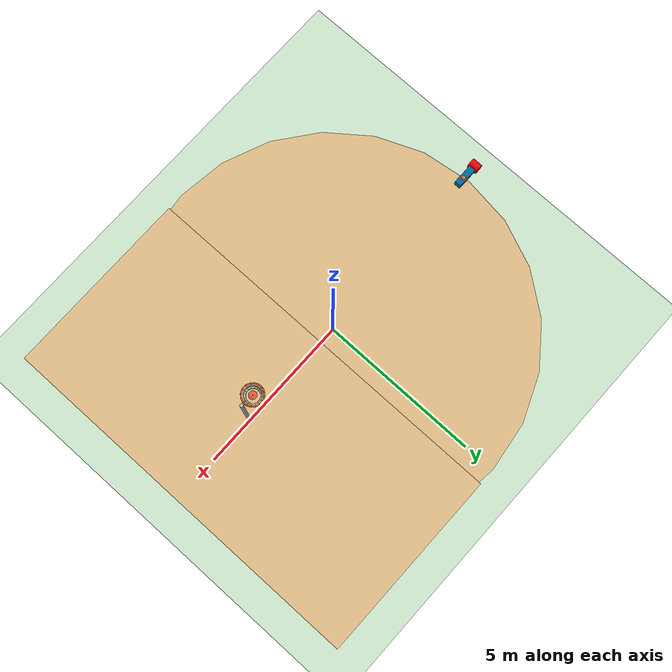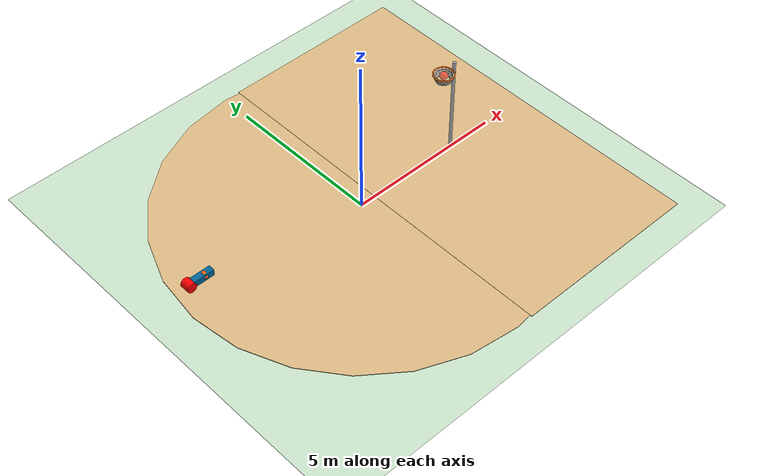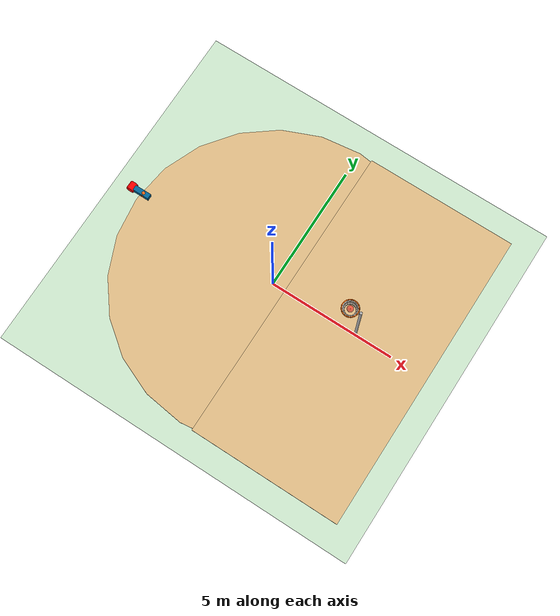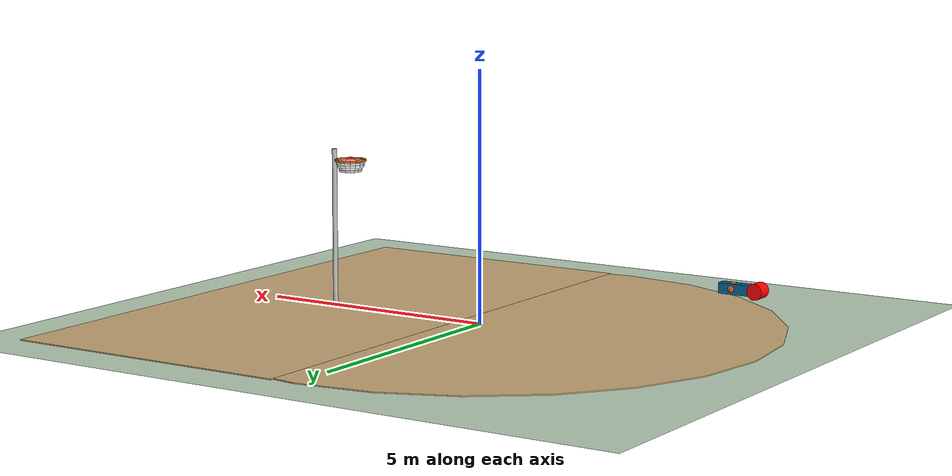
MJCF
<mujoco model="three_pointer">
      <compiler angle="radian" inertiafromgeom="true" />
      <default>
            <joint armature="1" damping="1" limited="true" />
            <geom conaffinity="1" condim="3" contype="1" friction=".4 .1 .1"
                  rgba="0.8 0.6 .4 1" solimp="0.0 0.8 0.01" solref="0.02 1" />
      </default>
      <option gravity="0 0 -9.81" integrator="RK4" timestep="0.01" />

      <asset>
            <texture builtin="gradient" height="100" rgb1="1 1 1" rgb2="0 0 0"
                  type="skybox" width="100" />
            <texture builtin="checker" height="100" name="texplane"
                  rgb1="0 0 0" rgb2="0.8 0.8 0.8" type="2d" width="100" />
            <material name="MatPlane" reflectance="0.5" shininess="1" specular="1"
                  texrepeat="60 60" texture="texplane" />
      </asset>

      <worldbody>
            <light cutoff="100" diffuse="1 1 1" dir="-0 0 -1.3"
                  directional="true" exponent="1" pos="0 0 5" specular=".1 .1 .1" />
            <geom conaffinity="1" condim="3" material="MatPlane" name="floor"
                  pos="0 0 0" rgba="0.8 0.9 0.8 1" size="40 40 40" type="plane" />

            <!-- Arena (visual only) -->
            <body name="combined_arena">
                  <camera name="track" mode="fixed" pos="0 -19 3.0" xyaxes="1 0 0 0 0 1" />
                  <geom type="cylinder" size="6 0.01" pos="0 0 0"
                        conaffinity="0" contype="0" rgba="0.87 0.73 0.52 1" />
                  <geom type="box" size="3 6 0.01" pos="3.5 0 0.001"
                        conaffinity="0" contype="0" rgba="0.87 0.73 0.52 1" />
            </body>

            <!-- Basketball Hoop (FIXED — removed sliding joints) -->
            <body name="basketball_hoop" pos="-3 0 0">
                  <!-- Rim: R=0.3, N=16, tube=0.02 -->
                  <geom type="cylinder" size="0.02 0.05890" pos="6.4000 0.0000 3" axisangle="-1.0000 -0.0000 0 1.5708" conaffinity="1" contype="0" rgba="1.0 0.4 0.0 1"/>
                  <geom type="cylinder" size="0.02 0.05890" pos="6.3772 0.1148 3" axisangle="-0.9239 -0.3827 0 1.5708" conaffinity="1" contype="0" rgba="1.0 0.4 0.0 1"/>
                  <geom type="cylinder" size="0.02 0.05890" pos="6.3121 0.2121 3" axisangle="-0.7071 -0.7071 0 1.5708" conaffinity="1" contype="0" rgba="1.0 0.4 0.0 1"/>
                  <geom type="cylinder" size="0.02 0.05890" pos="6.2148 0.2772 3" axisangle="-0.3827 -0.9239 0 1.5708" conaffinity="1" contype="0" rgba="1.0 0.4 0.0 1"/>
                  <geom type="cylinder" size="0.02 0.05890" pos="6.1000 0.3000 3" axisangle="-0.0000 -1.0000 0 1.5708" conaffinity="1" contype="0" rgba="1.0 0.4 0.0 1"/>
                  <geom type="cylinder" size="0.02 0.05890" pos="5.9852 0.2772 3" axisangle="0.3827 -0.9239 0 1.5708" conaffinity="1" contype="0" rgba="1.0 0.4 0.0 1"/>
                  <geom type="cylinder" size="0.02 0.05890" pos="5.8879 0.2121 3" axisangle="0.7071 -0.7071 0 1.5708" conaffinity="1" contype="0" rgba="1.0 0.4 0.0 1"/>
                  <geom type="cylinder" size="0.02 0.05890" pos="5.8228 0.1148 3" axisangle="0.9239 -0.3827 0 1.5708" conaffinity="1" contype="0" rgba="1.0 0.4 0.0 1"/>
                  <geom type="cylinder" size="0.02 0.05890" pos="5.8000 0.0000 3" axisangle="1.0000 -0.0000 0 1.5708" conaffinity="1" contype="0" rgba="1.0 0.4 0.0 1"/>
                  <geom type="cylinder" size="0.02 0.05890" pos="5.8228 -0.1148 3" axisangle="0.9239 0.3827 0 1.5708" conaffinity="1" contype="0" rgba="1.0 0.4 0.0 1"/>
                  <geom type="cylinder" size="0.02 0.05890" pos="5.8879 -0.2121 3" axisangle="0.7071 0.7071 0 1.5708" conaffinity="1" contype="0" rgba="1.0 0.4 0.0 1"/>
                  <geom type="cylinder" size="0.02 0.05890" pos="5.9852 -0.2772 3" axisangle="0.3827 0.9239 0 1.5708" conaffinity="1" contype="0" rgba="1.0 0.4 0.0 1"/>
                  <geom type="cylinder" size="0.02 0.05890" pos="6.1000 -0.3000 3" axisangle="0.0000 1.0000 0 1.5708" conaffinity="1" contype="0" rgba="1.0 0.4 0.0 1"/>
                  <geom type="cylinder" size="0.02 0.05890" pos="6.2148 -0.2772 3" axisangle="-0.3827 0.9239 0 1.5708" conaffinity="1" contype="0" rgba="1.0 0.4 0.0 1"/>
                  <geom type="cylinder" size="0.02 0.05890" pos="6.3121 -0.2121 3" axisangle="-0.7071 0.7071 0 1.5708" conaffinity="1" contype="0" rgba="1.0 0.4 0.0 1"/>
                  <geom type="cylinder" size="0.02 0.05890" pos="6.3772 -0.1148 3" axisangle="-0.9239 0.3827 0 1.5708" conaffinity="1" contype="0" rgba="1.0 0.4 0.0 1"/>

                  <!-- Rim: R=0.27, N=16, tube=0.02 -->
<geom type="cylinder" size="0.02 0.05301" pos="6.3700 0.0000 2.98" axisangle="-1.0000 -0.0000 0 1.5708" conaffinity="1" contype="0" rgba="1.0 1.0 1.0 0.7"/>
<geom type="cylinder" size="0.02 0.05301" pos="6.3494 0.1033 2.98" axisangle="-0.9239 -0.3827 0 1.5708" conaffinity="1" contype="0" rgba="1.0 1.0 1.0 0.7"/>
<geom type="cylinder" size="0.02 0.05301" pos="6.2909 0.1909 2.98" axisangle="-0.7071 -0.7071 0 1.5708" conaffinity="1" contype="0" rgba="1.0 1.0 1.0 0.7"/>
<geom type="cylinder" size="0.02 0.05301" pos="6.2033 0.2494 2.98" axisangle="-0.3827 -0.9239 0 1.5708" conaffinity="1" contype="0" rgba="1.0 1.0 1.0 0.7"/>
<geom type="cylinder" size="0.02 0.05301" pos="6.1000 0.2700 2.98" axisangle="-0.0000 -1.0000 0 1.5708" conaffinity="1" contype="0" rgba="1.0 1.0 1.0 0.7"/>
<geom type="cylinder" size="0.02 0.05301" pos="5.9967 0.2494 2.98" axisangle="0.3827 -0.9239 0 1.5708" conaffinity="1" contype="0" rgba="1.0 1.0 1.0 0.7"/>
<geom type="cylinder" size="0.02 0.05301" pos="5.9091 0.1909 2.98" axisangle="0.7071 -0.7071 0 1.5708" conaffinity="1" contype="0" rgba="1.0 1.0 1.0 0.7"/>
<geom type="cylinder" size="0.02 0.05301" pos="5.8506 0.1033 2.98" axisangle="0.9239 -0.3827 0 1.5708" conaffinity="1" contype="0" rgba="1.0 1.0 1.0 0.7"/>
<geom type="cylinder" size="0.02 0.05301" pos="5.8300 0.0000 2.98" axisangle="1.0000 -0.0000 0 1.5708" conaffinity="1" contype="0" rgba="1.0 1.0 1.0 0.7"/>
<geom type="cylinder" size="0.02 0.05301" pos="5.8506 -0.1033 2.98" axisangle="0.9239 0.3827 0 1.5708" conaffinity="1" contype="0" rgba="1.0 1.0 1.0 0.7"/>
<geom type="cylinder" size="0.02 0.05301" pos="5.9091 -0.1909 2.98" axisangle="0.7071 0.7071 0 1.5708" conaffinity="1" contype="0" rgba="1.0 1.0 1.0 0.7"/>
<geom type="cylinder" size="0.02 0.05301" pos="5.9967 -0.2494 2.98" axisangle="0.3827 0.9239 0 1.5708" conaffinity="1" contype="0" rgba="1.0 1.0 1.0 0.7"/>
<geom type="cylinder" size="0.02 0.05301" pos="6.1000 -0.2700 2.98" axisangle="0.0000 1.0000 0 1.5708" conaffinity="1" contype="0" rgba="1.0 1.0 1.0 0.7"/>
<geom type="cylinder" size="0.02 0.05301" pos="6.2033 -0.2494 2.98" axisangle="-0.3827 0.9239 0 1.5708" conaffinity="1" contype="0" rgba="1.0 1.0 1.0 0.7"/>
<geom type="cylinder" size="0.02 0.05301" pos="6.2909 -0.1909 2.98" axisangle="-0.7071 0.7071 0 1.5708" conaffinity="1" contype="0" rgba="1.0 1.0 1.0 0.7"/>
<geom type="cylinder" size="0.02 0.05301" pos="6.3494 -0.1033 2.98" axisangle="-0.9239 0.3827 0 1.5708" conaffinity="1" contype="0" rgba="1.0 1.0 1.0 0.7"/>
<!-- Rim: R=0.27, N=16, tube=0.02 -->
<geom type="cylinder" size="0.02 0.05301" pos="6.3700 0.0000 2.95" axisangle="-1.0000 -0.0000 0 1.5708" conaffinity="1" contype="0" rgba="1.0 1.0 1.0 0.7"/>
<geom type="cylinder" size="0.02 0.05301" pos="6.3494 0.1033 2.95" axisangle="-0.9239 -0.3827 0 1.5708" conaffinity="1" contype="0" rgba="1.0 1.0 1.0 0.7"/>
<geom type="cylinder" size="0.02 0.05301" pos="6.2909 0.1909 2.95" axisangle="-0.7071 -0.7071 0 1.5708" conaffinity="1" contype="0" rgba="1.0 1.0 1.0 0.7"/>
<geom type="cylinder" size="0.02 0.05301" pos="6.2033 0.2494 2.95" axisangle="-0.3827 -0.9239 0 1.5708" conaffinity="1" contype="0" rgba="1.0 1.0 1.0 0.7"/>
<geom type="cylinder" size="0.02 0.05301" pos="6.1000 0.2700 2.95" axisangle="-0.0000 -1.0000 0 1.5708" conaffinity="1" contype="0" rgba="1.0 1.0 1.0 0.7"/>
<geom type="cylinder" size="0.02 0.05301" pos="5.9967 0.2494 2.95" axisangle="0.3827 -0.9239 0 1.5708" conaffinity="1" contype="0" rgba="1.0 1.0 1.0 0.7"/>
<geom type="cylinder" size="0.02 0.05301" pos="5.9091 0.1909 2.95" axisangle="0.7071 -0.7071 0 1.5708" conaffinity="1" contype="0" rgba="1.0 1.0 1.0 0.7"/>
<geom type="cylinder" size="0.02 0.05301" pos="5.8506 0.1033 2.95" axisangle="0.9239 -0.3827 0 1.5708" conaffinity="1" contype="0" rgba="1.0 1.0 1.0 0.7"/>
<geom type="cylinder" size="0.02 0.05301" pos="5.8300 0.0000 2.95" axisangle="1.0000 -0.0000 0 1.5708" conaffinity="1" contype="0" rgba="1.0 1.0 1.0 0.7"/>
<geom type="cylinder" size="0.02 0.05301" pos="5.8506 -0.1033 2.95" axisangle="0.9239 0.3827 0 1.5708" conaffinity="1" contype="0" rgba="1.0 1.0 1.0 0.7"/>
<geom type="cylinder" size="0.02 0.05301" pos="5.9091 -0.1909 2.95" axisangle="0.7071 0.7071 0 1.5708" conaffinity="1" contype="0" rgba="1.0 1.0 1.0 0.7"/>
<geom type="cylinder" size="0.02 0.05301" pos="5.9967 -0.2494 2.95" axisangle="0.3827 0.9239 0 1.5708" conaffinity="1" contype="0" rgba="1.0 1.0 1.0 0.7"/>
<geom type="cylinder" size="0.02 0.05301" pos="6.1000 -0.2700 2.95" axisangle="0.0000 1.0000 0 1.5708" conaffinity="1" contype="0" rgba="1.0 1.0 1.0 0.7"/>
<geom type="cylinder" size="0.02 0.05301" pos="6.2033 -0.2494 2.95" axisangle="-0.3827 0.9239 0 1.5708" conaffinity="1" contype="0" rgba="1.0 1.0 1.0 0.7"/>
<geom type="cylinder" size="0.02 0.05301" pos="6.2909 -0.1909 2.95" axisangle="-0.7071 0.7071 0 1.5708" conaffinity="1" contype="0" rgba="1.0 1.0 1.0 0.7"/>
<geom type="cylinder" size="0.02 0.05301" pos="6.3494 -0.1033 2.95" axisangle="-0.9239 0.3827 0 1.5708" conaffinity="1" contype="0" rgba="1.0 1.0 1.0 0.7"/>
<!-- Rim: R=0.26, N=16, tube=0.02 -->
<geom type="cylinder" size="0.02 0.05105" pos="6.3600 0.0000 2.92" axisangle="-1.0000 -0.0000 0 1.5708" conaffinity="1" contype="0" rgba="1.0 1.0 1.0 0.7"/>
<geom type="cylinder" size="0.02 0.05105" pos="6.3402 0.0995 2.92" axisangle="-0.9239 -0.3827 0 1.5708" conaffinity="1" contype="0" rgba="1.0 1.0 1.0 0.7"/>
<geom type="cylinder" size="0.02 0.05105" pos="6.2838 0.1838 2.92" axisangle="-0.7071 -0.7071 0 1.5708" conaffinity="1" contype="0" rgba="1.0 1.0 1.0 0.7"/>
<geom type="cylinder" size="0.02 0.05105" pos="6.1995 0.2402 2.92" axisangle="-0.3827 -0.9239 0 1.5708" conaffinity="1" contype="0" rgba="1.0 1.0 1.0 0.7"/>
<geom type="cylinder" size="0.02 0.05105" pos="6.1000 0.2600 2.92" axisangle="-0.0000 -1.0000 0 1.5708" conaffinity="1" contype="0" rgba="1.0 1.0 1.0 0.7"/>
<geom type="cylinder" size="0.02 0.05105" pos="6.0005 0.2402 2.92" axisangle="0.3827 -0.9239 0 1.5708" conaffinity="1" contype="0" rgba="1.0 1.0 1.0 0.7"/>
<geom type="cylinder" size="0.02 0.05105" pos="5.9162 0.1838 2.92" axisangle="0.7071 -0.7071 0 1.5708" conaffinity="1" contype="0" rgba="1.0 1.0 1.0 0.7"/>
<geom type="cylinder" size="0.02 0.05105" pos="5.8598 0.0995 2.92" axisangle="0.9239 -0.3827 0 1.5708" conaffinity="1" contype="0" rgba="1.0 1.0 1.0 0.7"/>
<geom type="cylinder" size="0.02 0.05105" pos="5.8400 0.0000 2.92" axisangle="1.0000 -0.0000 0 1.5708" conaffinity="1" contype="0" rgba="1.0 1.0 1.0 0.7"/>
<geom type="cylinder" size="0.02 0.05105" pos="5.8598 -0.0995 2.92" axisangle="0.9239 0.3827 0 1.5708" conaffinity="1" contype="0" rgba="1.0 1.0 1.0 0.7"/>
<geom type="cylinder" size="0.02 0.05105" pos="5.9162 -0.1838 2.92" axisangle="0.7071 0.7071 0 1.5708" conaffinity="1" contype="0" rgba="1.0 1.0 1.0 0.7"/>
<geom type="cylinder" size="0.02 0.05105" pos="6.0005 -0.2402 2.92" axisangle="0.3827 0.9239 0 1.5708" conaffinity="1" contype="0" rgba="1.0 1.0 1.0 0.7"/>
<geom type="cylinder" size="0.02 0.05105" pos="6.1000 -0.2600 2.92" axisangle="0.0000 1.0000 0 1.5708" conaffinity="1" contype="0" rgba="1.0 1.0 1.0 0.7"/>
<geom type="cylinder" size="0.02 0.05105" pos="6.1995 -0.2402 2.92" axisangle="-0.3827 0.9239 0 1.5708" conaffinity="1" contype="0" rgba="1.0 1.0 1.0 0.7"/>
<geom type="cylinder" size="0.02 0.05105" pos="6.2838 -0.1838 2.92" axisangle="-0.7071 0.7071 0 1.5708" conaffinity="1" contype="0" rgba="1.0 1.0 1.0 0.7"/>
<geom type="cylinder" size="0.02 0.05105" pos="6.3402 -0.0995 2.92" axisangle="-0.9239 0.3827 0 1.5708" conaffinity="1" contype="0" rgba="1.0 1.0 1.0 0.7"/>
<!-- Rim: R=0.25, N=16, tube=0.02 -->
<geom type="cylinder" size="0.02 0.04909" pos="6.3500 0.0000 2.88" axisangle="-1.0000 -0.0000 0 1.5708" conaffinity="1" contype="0" rgba="1.0 1.0 1.0 0.7"/>
<geom type="cylinder" size="0.02 0.04909" pos="6.3310 0.0957 2.88" axisangle="-0.9239 -0.3827 0 1.5708" conaffinity="1" contype="0" rgba="1.0 1.0 1.0 0.7"/>
<geom type="cylinder" size="0.02 0.04909" pos="6.2768 0.1768 2.88" axisangle="-0.7071 -0.7071 0 1.5708" conaffinity="1" contype="0" rgba="1.0 1.0 1.0 0.7"/>
<geom type="cylinder" size="0.02 0.04909" pos="6.1957 0.2310 2.88" axisangle="-0.3827 -0.9239 0 1.5708" conaffinity="1" contype="0" rgba="1.0 1.0 1.0 0.7"/>
<geom type="cylinder" size="0.02 0.04909" pos="6.1000 0.2500 2.88" axisangle="-0.0000 -1.0000 0 1.5708" conaffinity="1" contype="0" rgba="1.0 1.0 1.0 0.7"/>
<geom type="cylinder" size="0.02 0.04909" pos="6.0043 0.2310 2.88" axisangle="0.3827 -0.9239 0 1.5708" conaffinity="1" contype="0" rgba="1.0 1.0 1.0 0.7"/>
<geom type="cylinder" size="0.02 0.04909" pos="5.9232 0.1768 2.88" axisangle="0.7071 -0.7071 0 1.5708" conaffinity="1" contype="0" rgba="1.0 1.0 1.0 0.7"/>
<geom type="cylinder" size="0.02 0.04909" pos="5.8690 0.0957 2.88" axisangle="0.9239 -0.3827 0 1.5708" conaffinity="1" contype="0" rgba="1.0 1.0 1.0 0.7"/>
<geom type="cylinder" size="0.02 0.04909" pos="5.8500 0.0000 2.88" axisangle="1.0000 -0.0000 0 1.5708" conaffinity="1" contype="0" rgba="1.0 1.0 1.0 0.7"/>
<geom type="cylinder" size="0.02 0.04909" pos="5.8690 -0.0957 2.88" axisangle="0.9239 0.3827 0 1.5708" conaffinity="1" contype="0" rgba="1.0 1.0 1.0 0.7"/>
<geom type="cylinder" size="0.02 0.04909" pos="5.9232 -0.1768 2.88" axisangle="0.7071 0.7071 0 1.5708" conaffinity="1" contype="0" rgba="1.0 1.0 1.0 0.7"/>
<geom type="cylinder" size="0.02 0.04909" pos="6.0043 -0.2310 2.88" axisangle="0.3827 0.9239 0 1.5708" conaffinity="1" contype="0" rgba="1.0 1.0 1.0 0.7"/>
<geom type="cylinder" size="0.02 0.04909" pos="6.1000 -0.2500 2.88" axisangle="0.0000 1.0000 0 1.5708" conaffinity="1" contype="0" rgba="1.0 1.0 1.0 0.7"/>
<geom type="cylinder" size="0.02 0.04909" pos="6.1957 -0.2310 2.88" axisangle="-0.3827 0.9239 0 1.5708" conaffinity="1" contype="0" rgba="1.0 1.0 1.0 0.7"/>
<geom type="cylinder" size="0.02 0.04909" pos="6.2768 -0.1768 2.88" axisangle="-0.7071 0.7071 0 1.5708" conaffinity="1" contype="0" rgba="1.0 1.0 1.0 0.7"/>
<geom type="cylinder" size="0.02 0.04909" pos="6.3310 -0.0957 2.88" axisangle="-0.9239 0.3827 0 1.5708" conaffinity="1" contype="0" rgba="1.0 1.0 1.0 0.7"/>

<!-- Rim: R=0.22, N=16, tube=0.02 -->
<geom type="cylinder" size="0.02 0.04320" pos="6.3200 0.0000 2.84" axisangle="-1.0000 -0.0000 0 1.5708" conaffinity="1" contype="0" rgba="1.0 1.0 1.0 0.7"/>
<geom type="cylinder" size="0.02 0.04320" pos="6.3033 0.0842 2.84" axisangle="-0.9239 -0.3827 0 1.5708" conaffinity="1" contype="0" rgba="1.0 1.0 1.0 0.7"/>
<geom type="cylinder" size="0.02 0.04320" pos="6.2556 0.1556 2.84" axisangle="-0.7071 -0.7071 0 1.5708" conaffinity="1" contype="0" rgba="1.0 1.0 1.0 0.7"/>
<geom type="cylinder" size="0.02 0.04320" pos="6.1842 0.2033 2.84" axisangle="-0.3827 -0.9239 0 1.5708" conaffinity="1" contype="0" rgba="1.0 1.0 1.0 0.7"/>
<geom type="cylinder" size="0.02 0.04320" pos="6.1000 0.2200 2.84" axisangle="-0.0000 -1.0000 0 1.5708" conaffinity="1" contype="0" rgba="1.0 1.0 1.0 0.7"/>
<geom type="cylinder" size="0.02 0.04320" pos="6.0158 0.2033 2.84" axisangle="0.3827 -0.9239 0 1.5708" conaffinity="1" contype="0" rgba="1.0 1.0 1.0 0.7"/>
<geom type="cylinder" size="0.02 0.04320" pos="5.9444 0.1556 2.84" axisangle="0.7071 -0.7071 0 1.5708" conaffinity="1" contype="0" rgba="1.0 1.0 1.0 0.7"/>
<geom type="cylinder" size="0.02 0.04320" pos="5.8967 0.0842 2.84" axisangle="0.9239 -0.3827 0 1.5708" conaffinity="1" contype="0" rgba="1.0 1.0 1.0 0.7"/>
<geom type="cylinder" size="0.02 0.04320" pos="5.8800 0.0000 2.84" axisangle="1.0000 -0.0000 0 1.5708" conaffinity="1" contype="0" rgba="1.0 1.0 1.0 0.7"/>
<geom type="cylinder" size="0.02 0.04320" pos="5.8967 -0.0842 2.84" axisangle="0.9239 0.3827 0 1.5708" conaffinity="1" contype="0" rgba="1.0 1.0 1.0 0.7"/>
<geom type="cylinder" size="0.02 0.04320" pos="5.9444 -0.1556 2.84" axisangle="0.7071 0.7071 0 1.5708" conaffinity="1" contype="0" rgba="1.0 1.0 1.0 0.7"/>
<geom type="cylinder" size="0.02 0.04320" pos="6.0158 -0.2033 2.84" axisangle="0.3827 0.9239 0 1.5708" conaffinity="1" contype="0" rgba="1.0 1.0 1.0 0.7"/>
<geom type="cylinder" size="0.02 0.04320" pos="6.1000 -0.2200 2.84" axisangle="0.0000 1.0000 0 1.5708" conaffinity="1" contype="0" rgba="1.0 1.0 1.0 0.7"/>
<geom type="cylinder" size="0.02 0.04320" pos="6.1842 -0.2033 2.84" axisangle="-0.3827 0.9239 0 1.5708" conaffinity="1" contype="0" rgba="1.0 1.0 1.0 0.7"/>
<geom type="cylinder" size="0.02 0.04320" pos="6.2556 -0.1556 2.84" axisangle="-0.7071 0.7071 0 1.5708" conaffinity="1" contype="0" rgba="1.0 1.0 1.0 0.7"/>
<geom type="cylinder" size="0.02 0.04320" pos="6.3033 -0.0842 2.84" axisangle="-0.9239 0.3827 0 1.5708" conaffinity="1" contype="0" rgba="1.0 1.0 1.0 0.7"/>

                  <!-- Rim: R=0.21, N=16, tube=0.02 -->
                  <geom type="cylinder" size="0.02 0.04123" pos="6.3100 0.0000 2.82" axisangle="-1.0000 -0.0000 0 1.5708" conaffinity="1" contype="0" rgba="1.0 1.0 1.0 0.7"/>
                  <geom type="cylinder" size="0.02 0.04123" pos="6.2940 0.0804 2.82" axisangle="-0.9239 -0.3827 0 1.5708" conaffinity="1" contype="0" rgba="1.0 1.0 1.0 0.7"/>
                  <geom type="cylinder" size="0.02 0.04123" pos="6.2485 0.1485 2.82" axisangle="-0.7071 -0.7071 0 1.5708" conaffinity="1" contype="0" rgba="1.0 1.0 1.0 0.7"/>
                  <geom type="cylinder" size="0.02 0.04123" pos="6.1804 0.1940 2.82" axisangle="-0.3827 -0.9239 0 1.5708" conaffinity="1" contype="0" rgba="1.0 1.0 1.0 0.7"/>
                  <geom type="cylinder" size="0.02 0.04123" pos="6.1000 0.2100 2.82" axisangle="-0.0000 -1.0000 0 1.5708" conaffinity="1" contype="0" rgba="1.0 1.0 1.0 0.7"/>
                  <geom type="cylinder" size="0.02 0.04123" pos="6.0196 0.1940 2.82" axisangle="0.3827 -0.9239 0 1.5708" conaffinity="1" contype="0" rgba="1.0 1.0 1.0 0.7"/>
                  <geom type="cylinder" size="0.02 0.04123" pos="5.9515 0.1485 2.82" axisangle="0.7071 -0.7071 0 1.5708" conaffinity="1" contype="0" rgba="1.0 1.0 1.0 0.7"/>
                  <geom type="cylinder" size="0.02 0.04123" pos="5.9060 0.0804 2.82" axisangle="0.9239 -0.3827 0 1.5708" conaffinity="1" contype="0" rgba="1.0 1.0 1.0 0.7"/>
                  <geom type="cylinder" size="0.02 0.04123" pos="5.8900 0.0000 2.82" axisangle="1.0000 -0.0000 0 1.5708" conaffinity="1" contype="0" rgba="1.0 1.0 1.0 0.7"/>
                  <geom type="cylinder" size="0.02 0.04123" pos="5.9060 -0.0804 2.82" axisangle="0.9239 0.3827 0 1.5708" conaffinity="1" contype="0" rgba="1.0 1.0 1.0 0.7"/>
                  <geom type="cylinder" size="0.02 0.04123" pos="5.9515 -0.1485 2.82" axisangle="0.7071 0.7071 0 1.5708" conaffinity="1" contype="0" rgba="1.0 1.0 1.0 0.7"/>
                  <geom type="cylinder" size="0.02 0.04123" pos="6.0196 -0.1940 2.82" axisangle="0.3827 0.9239 0 1.5708" conaffinity="1" contype="0" rgba="1.0 1.0 1.0 0.7"/>
                  <geom type="cylinder" size="0.02 0.04123" pos="6.1000 -0.2100 2.82" axisangle="0.0000 1.0000 0 1.5708" conaffinity="1" contype="0" rgba="1.0 1.0 1.0 0.7"/>
                  <geom type="cylinder" size="0.02 0.04123" pos="6.1804 -0.1940 2.82" axisangle="-0.3827 0.9239 0 1.5708" conaffinity="1" contype="0" rgba="1.0 1.0 1.0 0.7"/>
                  <geom type="cylinder" size="0.02 0.04123" pos="6.2485 -0.1485 2.82" axisangle="-0.7071 0.7071 0 1.5708" conaffinity="1" contype="0" rgba="1.0 1.0 1.0 0.7"/>
                  <geom type="cylinder" size="0.02 0.04123" pos="6.2940 -0.0804 2.82" axisangle="-0.9239 0.3827 0 1.5708" conaffinity="1" contype="0" rgba="1.0 1.0 1.0 0.7"/>

                  <!-- Rim: R=0.21, N=16, tube=0.02 -->
                  <geom type="cylinder" size="0.02 0.04123" pos="6.3100 0.0000 2.79" axisangle="-1.0000 -0.0000 0 1.5708" conaffinity="1" contype="0" rgba="1.0 1.0 1.0 0.7"/>
                  <geom type="cylinder" size="0.02 0.04123" pos="6.2940 0.0804 2.79" axisangle="-0.9239 -0.3827 0 1.5708" conaffinity="1" contype="0" rgba="1.0 1.0 1.0 0.7"/>
                  <geom type="cylinder" size="0.02 0.04123" pos="6.2485 0.1485 2.79" axisangle="-0.7071 -0.7071 0 1.5708" conaffinity="1" contype="0" rgba="1.0 1.0 1.0 0.7"/>
                  <geom type="cylinder" size="0.02 0.04123" pos="6.1804 0.1940 2.79" axisangle="-0.3827 -0.9239 0 1.5708" conaffinity="1" contype="0" rgba="1.0 1.0 1.0 0.7"/>
                  <geom type="cylinder" size="0.02 0.04123" pos="6.1000 0.2100 2.79" axisangle="-0.0000 -1.0000 0 1.5708" conaffinity="1" contype="0" rgba="1.0 1.0 1.0 0.7"/>
                  <geom type="cylinder" size="0.02 0.04123" pos="6.0196 0.1940 2.79" axisangle="0.3827 -0.9239 0 1.5708" conaffinity="1" contype="0" rgba="1.0 1.0 1.0 0.7"/>
                  <geom type="cylinder" size="0.02 0.04123" pos="5.9515 0.1485 2.79" axisangle="0.7071 -0.7071 0 1.5708" conaffinity="1" contype="0" rgba="1.0 1.0 1.0 0.7"/>
                  <geom type="cylinder" size="0.02 0.04123" pos="5.9060 0.0804 2.79" axisangle="0.9239 -0.3827 0 1.5708" conaffinity="1" contype="0" rgba="1.0 1.0 1.0 0.7"/>
                  <geom type="cylinder" size="0.02 0.04123" pos="5.8900 0.0000 2.79" axisangle="1.0000 -0.0000 0 1.5708" conaffinity="1" contype="0" rgba="1.0 1.0 1.0 0.7"/>
                  <geom type="cylinder" size="0.02 0.04123" pos="5.9060 -0.0804 2.79" axisangle="0.9239 0.3827 0 1.5708" conaffinity="1" contype="0" rgba="1.0 1.0 1.0 0.7"/>
                  <geom type="cylinder" size="0.02 0.04123" pos="5.9515 -0.1485 2.79" axisangle="0.7071 0.7071 0 1.5708" conaffinity="1" contype="0" rgba="1.0 1.0 1.0 0.7"/>
                  <geom type="cylinder" size="0.02 0.04123" pos="6.0196 -0.1940 2.79" axisangle="0.3827 0.9239 0 1.5708" conaffinity="1" contype="0" rgba="1.0 1.0 1.0 0.7"/>
                  <geom type="cylinder" size="0.02 0.04123" pos="6.1000 -0.2100 2.79" axisangle="0.0000 1.0000 0 1.5708" conaffinity="1" contype="0" rgba="1.0 1.0 1.0 0.7"/>
                  <geom type="cylinder" size="0.02 0.04123" pos="6.1804 -0.1940 2.79" axisangle="-0.3827 0.9239 0 1.5708" conaffinity="1" contype="0" rgba="1.0 1.0 1.0 0.7"/>
                  <geom type="cylinder" size="0.02 0.04123" pos="6.2485 -0.1485 2.79" axisangle="-0.7071 0.7071 0 1.5708" conaffinity="1" contype="0" rgba="1.0 1.0 1.0 0.7"/>
                  <geom type="cylinder" size="0.02 0.04123" pos="6.2940 -0.0804 2.79" axisangle="-0.9239 0.3827 0 1.5708" conaffinity="1" contype="0" rgba="1.0 1.0 1.0 0.7"/>
                  <!-- Pole -->
                  <geom type="cylinder" size="0.05 1.6" pos="6.5 0 1.6"
                        conaffinity="1" contype="1" rgba="0.7 0.7 0.7 1" />
                  <geom type="cylinder" size="0.02 0.02" axisangle="0.0000 1.0000 0 1.5708" pos="6.4350 0.0000 3"
                        conaffinity="1" contype="1" rgba="0.7 0.7 0.7 1" />
                  <!-- Target marker (small red sphere at hoop center for reward calc) -->
                  <geom type="sphere" size="0.119" pos="6.1 0 2.95"
                        conaffinity="0" contype="0" rgba="1 0 0 0.5" />
                  <!-- Site mirrors the marker above so Python can query its world position -->
                  <site name="hoop_center" type="sphere" size="0.01" pos="6.1 0 2.95" rgba="1 0 0 1" />
            </body>

            <!-- Arm (FIXED — arm geoms now collide contype=1) -->
            <body name="arm" pos="-6 0 1.3">
                  <joint axis="0 1 0" limited="false" name="joint0"
                        pos="0 0 0" type="hinge" damping="0.3" armature="0.0" />
                  <geom conaffinity="1" contype="1" fromto="0 -0.15 0 0 0.15 0"
                        name="root" rgba="1 0.0 0.0 1" size=".15" type="cylinder" />
                  <geom conaffinity="1" contype="1" fromto="0 0 0 0.75 0 0"
                        name="link0" rgba="0.0 0.4 0.6 1" size=".1" type="box"
                        mass="0.0001" />
            </body>

            <!-- Basketball (FIXED — starts at arm tip, not floating at z=5) -->
            <body name="basketball" pos="-5.5 0 1.3">
                  <freejoint name="ball_free" />
                  <geom conaffinity="1" contype="1" name="target" pos="0 0 0"
                        rgba="0.9 0.4 0.1 1" size=".12" mass="0.1" type="sphere" />
            </body>
      </worldbody>

      <actuator>
            <motor ctrllimited="true" ctrlrange="-1.0 1.0"
                  gear="20.0" joint="joint0" />
      </actuator>
      <equality>
            <weld name="ball_grip" body1="arm" body2="basketball"
                  relpose="0.85 0 0 1 0 0 0"
                  active="true" />
      </equality>
</mujoco>
